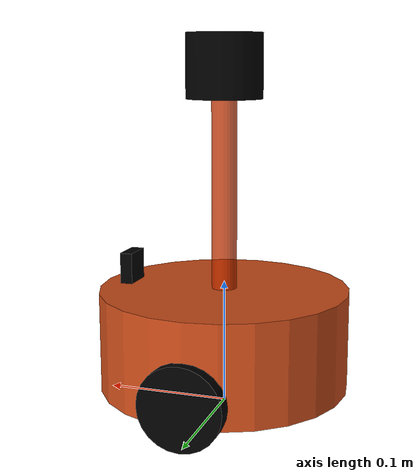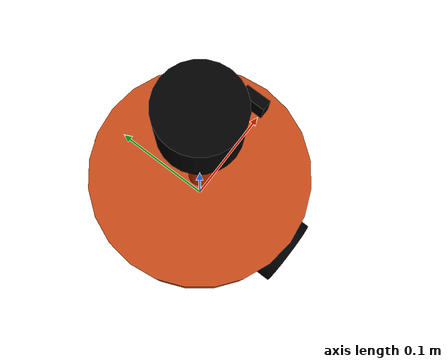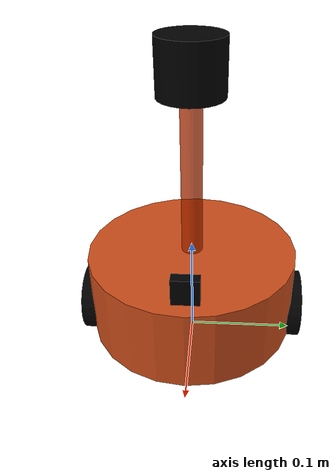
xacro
<robot name="mycar" xmlns:xacro="http://wiki.ros.org/xacro">

    <!-- Include inertial calculation macros -->
    <xacro:include filename="$(find test_03)/xacro/head.xacro" />

    <!-- Define PI here to be globally accessible if not defined in included files -->
    <xacro:property name="PI" value="3.141592653589793"/>

    <!-- Include robot components -->
    <!-- Properties like base_link_length are defined within car_base.xacro -->
    <!-- and should be accessible by camera.xacro and laser.xacro -->
    <!-- if they are included in the correct order or properties are scoped correctly. -->
    <!-- It's generally safer to pass them as parameters if there are scope issues. -->
    <!-- For now, we assume xacro's property scoping handles this. -->
    <xacro:include filename="$(find test_03)/xacro/car_base.xacro" />
    <xacro:include filename="$(find test_03)/xacro/camera.xacro" />
    <xacro:include filename="$(find test_03)/xacro/laser.xacro" />

    <!-- Add Differential Drive Plugin for Movement -->
    <!-- This plugin subscribes to cmd_vel and moves the robot -->
    <gazebo>
        <plugin name="differential_drive_controller" filename="libgazebo_ros_diff_drive.so">
            <alwaysOn>true</alwaysOn>
            <updateRate>100</updateRate>
            <leftJoint>left_wheel_to_base_link</leftJoint>
            <rightJoint>right_wheel_to_base_link</rightJoint>
            <wheelSeparation>${2 * base_link_radius}</wheelSeparation> <!-- Distance between center of wheels -->
            <wheelDiameter>${2 * wheel_radius}</wheelDiameter>
            <torque>20</torque>
            <commandTopic>cmd_vel</commandTopic>
            <odometryTopic>odom</odometryTopic>
            <odometryFrame>odom</odometryFrame>
            <robotBaseFrame>base_footprint</robotBaseFrame>
            <publishWheelTF>true</publishWheelTF>
            <publishWheelJointState>true</publishWheelJointState>
            <rosDebugLevel>Debug</rosDebugLevel>
            <wheelAcceleration>1</wheelAcceleration>
            <wheelTorque>5</wheelTorque>
            <odometrySource>world</odometrySource> <!-- 'world' or 'encoder' -->
            <publishTf>1</publishTf>
        </plugin>
    </gazebo>

</robot>

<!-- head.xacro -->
<robot name="base_inertial_macros" xmlns:xacro="http://wiki.ros.org/xacro">

    <xacro:macro name="sphere_inertial_matrix" params="m r">
        <inertial>
            <mass value="${m}" />
            <inertia ixx="${2*m*r*r/5}" ixy="0" ixz="0"
                iyy="${2*m*r*r/5}" iyz="0"
                izz="${2*m*r*r/5}" />
        </inertial>
    </xacro:macro>

    <xacro:macro name="cylinder_inertial_matrix" params="m r h">
        <inertial>
            <mass value="${m}" />
            <inertia ixx="${m*(3*r*r+h*h)/12}" ixy = "0" ixz = "0"
                iyy="${m*(3*r*r+h*h)/12}" iyz = "0"
                izz="${m*r*r/2}" />
        </inertial>
    </xacro:macro>

    <xacro:macro name="Box_inertial_matrix" params="m l w h">
       <inertial>
               <mass value="${m}" />
               <inertia ixx="${m*(h*h + l*l)/12}" ixy = "0" ixz = "0"
                   iyy="${m*(w*w + l*l)/12}" iyz= "0"
                   izz="${m*(w*w + h*h)/12}" />
       </inertial>
   </xacro:macro>
</robot>

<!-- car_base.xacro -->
<robot name="car_base" xmlns:xacro="http://www.ros.org/wiki/xacro">

    <xacro:property name="PI" value="3.141592653589793"/>

    <material name="black">
        <color rgba="0.0 0.0 0.0 1.0" />
    </material>
    <material name="yellow_vis">
      <color rgba="0.8 0.3 0.1 1.0" />
    </material>

    <xacro:property name="base_footprint_radius" value="0.001" />
    <xacro:property name="base_link_radius" value="0.1" />
    <xacro:property name="base_link_length" value="0.08" />
    <xacro:property name="earth_space" value="0.015" />
    <xacro:property name="base_link_m" value="0.5" />

    <link name="base_footprint">
      <visual>
        <geometry>
          <sphere radius="${base_footprint_radius}" />
        </geometry>
      </visual>
    </link>

    <link name="base_link">
      <visual>
        <geometry>
          <cylinder radius="${base_link_radius}" length="${base_link_length}" />
        </geometry>
        <origin xyz="0 0 0" rpy="0 0 0" />
        <material name="yellow_vis"/>
      </visual>
      <collision>
        <geometry>
          <cylinder radius="${base_link_radius}" length="${base_link_length}" />
        </geometry>
        <origin xyz="0 0 0" rpy="0 0 0" />
      </collision>
      <xacro:cylinder_inertial_matrix m="${base_link_m}" r="${base_link_radius}" h="${base_link_length}" />
    </link>

    <gazebo reference="base_link">
        <material>Gazebo/Orange</material>
    </gazebo>

    <joint name="base_link_to_base_footprint" type="fixed">
      <parent link="base_footprint" />
      <child link="base_link" />
      <origin xyz="0 0 ${earth_space + base_link_length / 2 }" />
    </joint>

    <xacro:property name="wheel_radius" value="0.0325" />
    <xacro:property name="wheel_length" value="0.015" />
    <xacro:property name="wheel_m" value="0.05" />

    <xacro:macro name="add_wheels" params="name flag">
      <link name="${name}_wheel">
        <visual>
          <geometry>
            <cylinder radius="${wheel_radius}" length="${wheel_length}" />
          </geometry>
          <origin xyz="0.0 0.0 0.0" rpy="${PI / 2} 0.0 0.0" />
          <material name="black" />
        </visual>
        <collision>
          <geometry>
            <cylinder radius="${wheel_radius}" length="${wheel_length}" />
          </geometry>
          <origin xyz="0.0 0.0 0.0" rpy="${PI / 2} 0.0 0.0" />
        </collision>
        <xacro:cylinder_inertial_matrix m="${wheel_m}" r="${wheel_radius}" h="${wheel_length}" />
      </link>

      <gazebo reference="${name}_wheel">
        <material>Gazebo/Red</material>
        <mu1>1.0</mu1>
        <mu2>1.0</mu2>
        <kp>1000000.0</kp>
        <kd>100.0</kd>
        <minDepth>0.001</minDepth>
        <maxVel>0.1</maxVel>
      </gazebo>

      <joint name="${name}_wheel_to_base_link" type="continuous">
        <parent link="base_link" />
        <child link="${name}_wheel" />
        <origin xyz="0 ${flag * base_link_radius} ${-(base_link_length / 2 + earth_space - wheel_radius) }" />
        <axis xyz="0 1 0" />
      </joint>
    </xacro:macro>
    <xacro:add_wheels name="left" flag="1" />
    <xacro:add_wheels name="right" flag="-1" />

    <xacro:property name="support_wheel_radius" value="0.0075" />
    <xacro:property name="support_wheel_m" value="0.03" />

    <xacro:macro name="add_support_wheel" params="name flag_x_pos" >
      <link name="${name}_support_wheel">
        <visual>
            <geometry>
                <sphere radius="${support_wheel_radius}" />
            </geometry>
            <origin xyz="0 0 0" rpy="0 0 0" />
            <material name="black" />
        </visual>
        <collision>
            <geometry>
                <sphere radius="${support_wheel_radius}" />
            </geometry>
            <origin xyz="0 0 0" rpy="0 0 0" />
        </collision>
        <xacro:sphere_inertial_matrix m="${support_wheel_m}" r="${support_wheel_radius}" />
      </link>

      <gazebo reference="${name}_support_wheel">
        <material>Gazebo/Red</material>
        <mu1>0.1</mu1>
        <mu2>0.1</mu2>
        <kp>1000000.0</kp>
        <kd>100.0</kd>
        <minDepth>0.001</minDepth>
        <maxVel>0.1</maxVel>
      </gazebo>

      <joint name="${name}_support_wheel_to_base_link" type="continuous">
          <parent link="base_link" />
          <child link="${name}_support_wheel" />
          <origin xyz="${flag_x_pos * (base_link_radius - support_wheel_radius*2) } 0 ${-(base_link_length / 2 + earth_space - support_wheel_radius)}" />
          <axis xyz="0 1 0" />
      </joint>
    </xacro:macro>

    <xacro:add_support_wheel name="front" flag_x_pos="0.7" />
    <xacro:add_support_wheel name="back" flag_x_pos="-0.7" />

</robot>

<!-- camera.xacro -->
<robot name="my_camera" xmlns:xacro="http://wiki.ros.org/xacro">

    <xacro:property name="camera_length_val" value="0.01" />
    <xacro:property name="camera_width_val" value="0.025" />
    <xacro:property name="camera_height_val" value="0.025" />
    <xacro:property name="camera_x_pos" value="0.08" />
    <xacro:property name="camera_y_pos" value="0.0" />
    <xacro:property name="camera_z_pos" value="${base_link_length / 2 + camera_height_val / 2}" />
    <xacro:property name="camera_m_val" value="0.01" />

    <link name="camera_link"> <!-- Renamed link to be more specific -->
        <visual>
            <geometry>
                <box size="${camera_length_val} ${camera_width_val} ${camera_height_val}" />
            </geometry>
            <origin xyz="0.0 0.0 0.0" rpy="0.0 0.0 0.0" />
            <material name="black" /> <!-- Assuming 'black' is defined in car_base.xacro or main xacro -->
        </visual>
        <collision>
            <geometry>
                <box size="${camera_length_val} ${camera_width_val} ${camera_height_val}" />
            </geometry>
            <origin xyz="0.0 0.0 0.0" rpy="0.0 0.0 0.0" />
        </collision>
        <xacro:Box_inertial_matrix m="${camera_m_val}" l="${camera_length_val}" w="${camera_width_val}" h="${camera_height_val}" />
    </link>

    <gazebo reference="camera_link">
        <material>Gazebo/Blue</material>
        <sensor type="camera" name="gazebo_camera_sensor">
            <update_rate>30.0</update_rate>
            <camera name="head">
                <horizontal_fov>1.3962634</horizontal_fov>
                <image>
                    <width>800</width>
                    <height>800</height>
                    <format>R8G8B8</format>
                </image>
                <clip>
                    <near>0.02</near>
                    <far>300</far>
                </clip>
            </camera>
            <plugin name="camera_controller" filename="libgazebo_ros_camera.so">
                <alwaysOn>true</alwaysOn>
                <updateRate>0.0</updateRate>
                <cameraName>mybot/camera1</cameraName>
                <imageTopicName>image_raw</imageTopicName>
                <cameraInfoTopicName>camera_info</cameraInfoTopicName>
                <frameName>camera_link_optical</frameName> <!-- Important: Optical frame -->
                <hackBaseline>0.07</hackBaseline>
                <distortionK1>0.0</distortionK1>
                <distortionK2>0.0</distortionK2>
                <distortionK3>0.0</distortionK3>
                <distortionT1>0.0</distortionT1>
                <distortionT2>0.0</distortionT2>
            </plugin>
        </sensor>
    </gazebo>

    <!-- Optical frame for camera, following ROS conventions -->
    <link name="camera_link_optical"/>
    <joint name="camera_optical_joint" type="fixed">
        <parent link="camera_link"/>
        <child link="camera_link_optical"/>
        <origin xyz="0 0 0" rpy="${-PI/2} 0 ${-PI/2}"/>
    </joint>

    <joint name="camera_to_base_link" type="fixed">
        <parent link="base_link" />
        <child link="camera_link" />
        <origin xyz="${camera_x_pos} ${camera_y_pos} ${camera_z_pos}" />
    </joint>

</robot>

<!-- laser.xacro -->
<robot name="my_laser" xmlns:xacro="http://wiki.ros.org/xacro">

    <xacro:property name="support_length_val" value="0.15" />
    <xacro:property name="support_radius_val" value="0.01" />
    <xacro:property name="support_x_pos" value="0.0" />
    <xacro:property name="support_y_pos" value="0.0" />
    <xacro:property name="support_z_pos" value="${base_link_length / 2 + support_length_val / 2}" />
    <xacro:property name="support_m_val" value="0.02" />

    <link name="support_link"> <!-- Renamed -->
        <visual>
            <geometry>
                <cylinder radius="${support_radius_val}" length="${support_length_val}" />
            </geometry>
            <origin xyz="0.0 0.0 0.0" rpy="0.0 0.0 0.0" />
            <material name="red_vis"> <!-- Rviz specific color -->
                <color rgba="0.8 0.2 0.0 0.8" />
            </material>
        </visual>
        <collision>
            <geometry>
                <cylinder radius="${support_radius_val}" length="${support_length_val}" />
            </geometry>
            <origin xyz="0.0 0.0 0.0" rpy="0.0 0.0 0.0" />
        </collision>
        <xacro:cylinder_inertial_matrix m="${support_m_val}" r="${support_radius_val}" h="${support_length_val}" />
    </link>

    <gazebo reference="support_link">
        <material>Gazebo/White</material>
    </gazebo>

    <joint name="support_to_base_link" type="fixed">
        <parent link="base_link" />
        <child link="support_link" />
        <origin xyz="${support_x_pos} ${support_y_pos} ${support_z_pos}" />
    </joint>

    <xacro:property name="laser_length_val" value="0.05" />
    <xacro:property name="laser_radius_val" value="0.03" />
    <xacro:property name="laser_x_pos" value="0.0" />
    <xacro:property name="laser_y_pos" value="0.0" />
    <xacro:property name="laser_z_pos" value="${support_length_val / 2 + laser_length_val / 2}" />
    <xacro:property name="laser_m_val" value="0.1" />

    <link name="laser_link"> <!-- Renamed -->
        <visual>
            <geometry>
                <cylinder radius="${laser_radius_val}" length="${laser_length_val}" />
            </geometry>
            <origin xyz="0.0 0.0 0.0" rpy="0.0 0.0 0.0" />
            <material name="black" /> <!-- Assuming 'black' is defined -->
        </visual>
        <collision>
            <geometry>
                <cylinder radius="${laser_radius_val}" length="${laser_length_val}" />
            </geometry>
            <origin xyz="0.0 0.0 0.0" rpy="0.0 0.0 0.0" />
        </collision>
        <xacro:cylinder_inertial_matrix m="${laser_m_val}" r="${laser_radius_val}" h="${laser_length_val}" />
    </link>

    <gazebo reference="laser_link">
        <material>Gazebo/Black</material>
        <!-- Add Gazebo Ray (Lidar) plugin -->
        <sensor type="ray" name="gazebo_lidar_sensor">
            <pose>0 0 0 0 0 0</pose>
            <visualize>true</visualize> <!-- Set to true to see rays in Gazebo -->
            <update_rate>10</update_rate>
            <ray>
                <scan>
                    <horizontal>
                        <samples>360</samples>
                        <resolution>1</resolution>
                        <min_angle>-${PI}</min_angle>
                        <max_angle>${PI}</max_angle>
                    </horizontal>
                </scan>
                <range>
                    <min>0.10</min>
                    <max>10.0</max>
                    <resolution>0.01</resolution>
                </range>
                <noise>
                    <type>gaussian</type>
                    <mean>0.0</mean>
                    <stddev>0.01</stddev>
                </noise>
            </ray>
            <plugin name="gazebo_ros_head_hokuyo_controller" filename="libgazebo_ros_laser.so">
                <topicName>/scan</topicName>
                <frameName>laser_link</frameName>
            </plugin>
        </sensor>
    </gazebo>

    <joint name="laser_to_support" type="fixed">
        <parent link="support_link" />
        <child link="laser_link" />
        <origin xyz="${laser_x_pos} ${laser_y_pos} ${laser_z_pos}" />
    </joint>

</robot>
